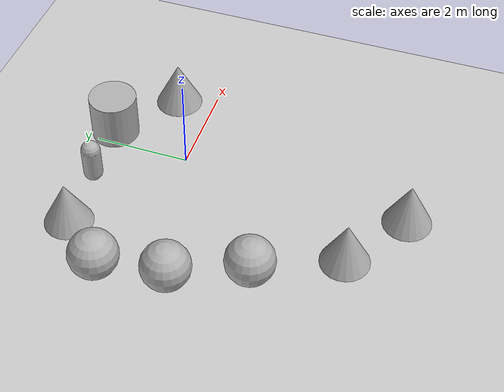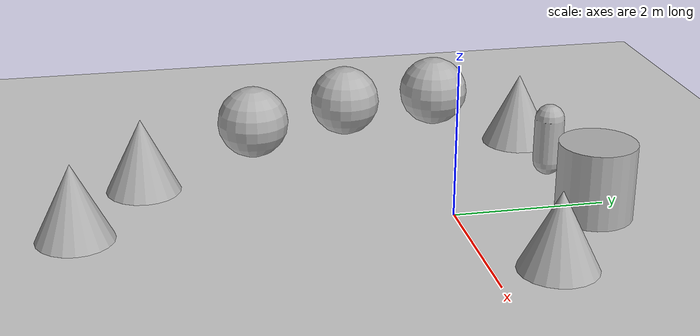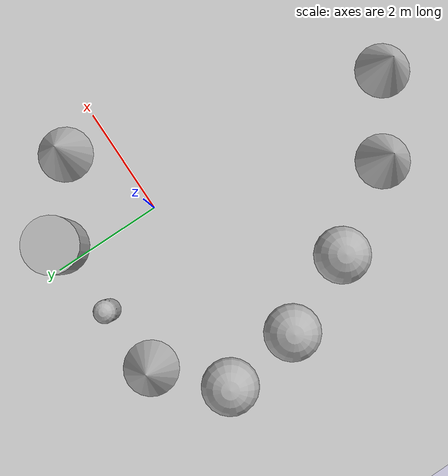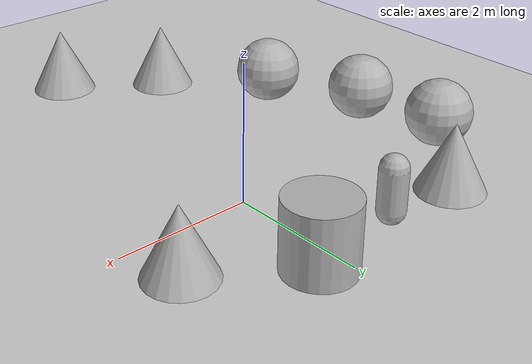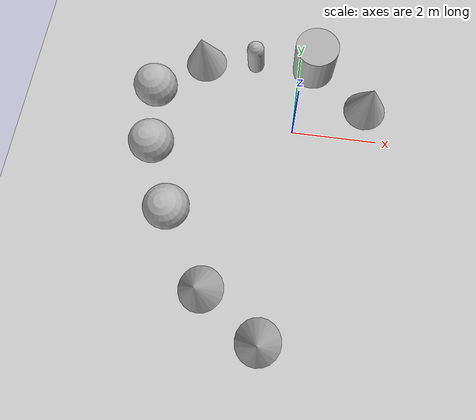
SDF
<sdf version='1.10'>
  <world name='empty'>
  <plugin
      filename="gz-sim-sensors-system"
      name="gz::sim::systems::Sensors">
      <render_engine>ogre</render_engine>
    </plugin>
    <physics name='1ms' type='ignored'>
      <max_step_size>0.001</max_step_size>
      <real_time_factor>1</real_time_factor>
      <real_time_update_rate>1000</real_time_update_rate>
    </physics>
    <plugin name='gz::sim::systems::Physics' filename='gz-sim-physics-system'/>
    <plugin name='gz::sim::systems::UserCommands' filename='gz-sim-user-commands-system'/>
    <plugin name='gz::sim::systems::SceneBroadcaster' filename='gz-sim-scene-broadcaster-system'/>
    <plugin name='gz::sim::systems::Contact' filename='gz-sim-contact-system'/>
    <gravity>0 0 -9.8000000000000007</gravity>
    <magnetic_field>5.5644999999999998e-06 2.2875799999999999e-05 -4.2388400000000002e-05</magnetic_field>
    <atmosphere type='adiabatic'/>
    <scene>
      <ambient>0.400000006 0.400000006 0.400000006 1</ambient>
      <background>0.699999988 0.699999988 0.699999988 1</background>
      <shadows>true</shadows>
    </scene>
    <model name='ground_plane'>
      <static>true</static>
      <link name='link'>
        <collision name='collision'>
          <geometry>
            <plane>
              <normal>0 0 1</normal>
              <size>100 100</size>
            </plane>
          </geometry>
          <surface>
            <friction>
              <ode/>
            </friction>
            <bounce/>
            <contact/>
          </surface>
        </collision>
        <visual name='visual'>
          <geometry>
            <plane>
              <normal>0 0 1</normal>
              <size>100 100</size>
            </plane>
          </geometry>
          <material>
            <ambient>0.800000012 0.800000012 0.800000012 1</ambient>
            <diffuse>0.800000012 0.800000012 0.800000012 1</diffuse>
            <specular>0.800000012 0.800000012 0.800000012 1</specular>
          </material>
        </visual>
        <pose>0 0 0 0 0 0</pose>
        <inertial>
          <pose>0 0 0 0 0 0</pose>
          <mass>1</mass>
          <inertia>
            <ixx>1</ixx>
            <ixy>0</ixy>
            <ixz>0</ixz>
            <iyy>1</iyy>
            <iyz>0</iyz>
            <izz>1</izz>
          </inertia>
        </inertial>
        <enable_wind>false</enable_wind>
      </link>
      <pose>0 0 0 0 0 0</pose>
      <self_collide>false</self_collide>
    </model>
    <model name='cylinder'>
      <pose>0.33956569160625705 1.7428431087014411 0.5 0 0 0</pose>
      <link name='cylinder_link'>
        <inertial>
          <inertia>
            <ixx>0.14580000000000001</ixx>
            <ixy>0</ixy>
            <ixz>0</ixz>
            <iyy>0.14580000000000001</iyy>
            <iyz>0</iyz>
            <izz>0.125</izz>
          </inertia>
          <mass>1</mass>
          <pose>0 0 0 0 0 0</pose>
        </inertial>
        <collision name='cylinder_collision'>
          <geometry>
            <cylinder>
              <radius>0.5</radius>
              <length>1</length>
            </cylinder>
          </geometry>
          <surface>
            <friction>
              <ode/>
            </friction>
            <bounce/>
            <contact/>
          </surface>
        </collision>
        <visual name='cylinder_visual'>
          <geometry>
            <cylinder>
              <radius>0.5</radius>
              <length>1</length>
            </cylinder>
          </geometry>
          <material>
            <ambient>0.300000012 0.300000012 0.300000012 1</ambient>
            <diffuse>0.699999988 0.699999988 0.699999988 1</diffuse>
            <specular>1 1 1 1</specular>
          </material>
        </visual>
        <pose>0 0 0 0 0 0</pose>
        <enable_wind>false</enable_wind>
      </link>
      <static>false</static>
      <self_collide>false</self_collide>
    </model>
    <model name='capsule'>
      <pose>-1.0736529480591992 1.6175272275102126 0.5 0 0 0</pose>
      <link name='capsule_link'>
        <inertial>
          <inertia>
            <ixx>0.074153999999999998</ixx>
            <ixy>0</ixy>
            <ixz>0</ixz>
            <iyy>0.074153999999999998</iyy>
            <iyz>0</iyz>
            <izz>0.018769000000000001</izz>
          </inertia>
          <mass>1</mass>
          <pose>0 0 0 0 0 0</pose>
        </inertial>
        <collision name='capsule_collision'>
          <geometry>
            <capsule>
              <radius>0.20000000000000001</radius>
              <length>0.59999999999999998</length>
            </capsule>
          </geometry>
          <surface>
            <friction>
              <ode/>
            </friction>
            <bounce/>
            <contact/>
          </surface>
        </collision>
        <visual name='capsule_visual'>
          <geometry>
            <capsule>
              <radius>0.20000000000000001</radius>
              <length>0.59999999999999998</length>
            </capsule>
          </geometry>
          <material>
            <ambient>0.300000012 0.300000012 0.300000012 1</ambient>
            <diffuse>0.699999988 0.699999988 0.699999988 1</diffuse>
            <specular>1 1 1 1</specular>
          </material>
        </visual>
        <pose>0 0 0 0 0 0</pose>
        <enable_wind>false</enable_wind>
      </link>
      <static>false</static>
      <self_collide>false</self_collide>
    </model>
    <model name='cone'>
      <pose>-2.3256486030578971 1.5980379677162329 0.5 0 0 0</pose>
      <link name='cone_link'>
        <inertial>
          <inertia>
            <ixx>0.074999999999999997</ixx>
            <ixy>0</ixy>
            <ixz>0</ixz>
            <iyy>0.074999999999999997</iyy>
            <iyz>0</iyz>
            <izz>0.074999999999999997</izz>
          </inertia>
          <mass>1</mass>
          <pose>0 0 0 0 0 0</pose>
        </inertial>
        <collision name='cone_collision'>
          <geometry>
            <cone>
              <radius>0.5</radius>
              <length>1</length>
            </cone>
          </geometry>
          <surface>
            <friction>
              <ode/>
            </friction>
            <bounce/>
            <contact/>
          </surface>
        </collision>
        <visual name='cone_visual'>
          <geometry>
            <cone>
              <radius>0.5</radius>
              <length>1</length>
            </cone>
          </geometry>
          <material>
            <ambient>0.300000012 0.300000012 0.300000012 1</ambient>
            <diffuse>0.699999988 0.699999988 0.699999988 1</diffuse>
            <specular>1 1 1 1</specular>
          </material>
        </visual>
        <pose>0 0 0 0 0 0</pose>
        <enable_wind>false</enable_wind>
      </link>
      <static>false</static>
      <self_collide>false</self_collide>
    </model>
    <model name='sphere'>
      <pose>-3.3019136068907882 0.58413740055611674 0.5 0 0 0</pose>
      <link name='sphere_link'>
        <inertial>
          <inertia>
            <ixx>0.10000000000000001</ixx>
            <ixy>0</ixy>
            <ixz>0</ixz>
            <iyy>0.10000000000000001</iyy>
            <iyz>0</iyz>
            <izz>0.10000000000000001</izz>
          </inertia>
          <mass>1</mass>
          <pose>0 0 0 0 0 0</pose>
        </inertial>
        <collision name='sphere_collision'>
          <geometry>
            <sphere>
              <radius>0.5</radius>
            </sphere>
          </geometry>
          <surface>
            <friction>
              <ode/>
            </friction>
            <bounce/>
            <contact/>
          </surface>
        </collision>
        <visual name='sphere_visual'>
          <geometry>
            <sphere>
              <radius>0.5</radius>
            </sphere>
          </geometry>
          <material>
            <ambient>0.300000012 0.300000012 0.300000012 1</ambient>
            <diffuse>0.699999988 0.699999988 0.699999988 1</diffuse>
            <specular>1 1 1 1</specular>
          </material>
        </visual>
        <pose>0 0 0 0 0 0</pose>
        <enable_wind>false</enable_wind>
      </link>
      <static>false</static>
      <self_collide>false</self_collide>
    </model>
    <model name='sphere_0'>
      <pose>-3.1293538819864524 -0.80383709333185371 0.5 0 0 0</pose>
      <link name='sphere_link'>
        <inertial>
          <inertia>
            <ixx>0.10000000000000001</ixx>
            <ixy>0</ixy>
            <ixz>0</ixz>
            <iyy>0.10000000000000001</iyy>
            <iyz>0</iyz>
            <izz>0.10000000000000001</izz>
          </inertia>
          <mass>1</mass>
          <pose>0 0 0 0 0 0</pose>
        </inertial>
        <collision name='sphere_collision'>
          <geometry>
            <sphere>
              <radius>0.5</radius>
            </sphere>
          </geometry>
          <surface>
            <friction>
              <ode/>
            </friction>
            <bounce/>
            <contact/>
          </surface>
        </collision>
        <visual name='sphere_visual'>
          <geometry>
            <sphere>
              <radius>0.5</radius>
            </sphere>
          </geometry>
          <material>
            <ambient>0.300000012 0.300000012 0.300000012 1</ambient>
            <diffuse>0.699999988 0.699999988 0.699999988 1</diffuse>
            <specular>1 1 1 1</specular>
          </material>
        </visual>
        <pose>0 0 0 0 0 0</pose>
        <enable_wind>false</enable_wind>
      </link>
      <static>false</static>
      <self_collide>false</self_collide>
    </model>
    <model name='sphere_1'>
      <pose>-2.5054964182880868 -2.2483306414366324 0.5 0 0 0</pose>
      <link name='sphere_link'>
        <inertial>
          <inertia>
            <ixx>0.10000000000000001</ixx>
            <ixy>0</ixy>
            <ixz>0</ixz>
            <iyy>0.10000000000000001</iyy>
            <iyz>0</iyz>
            <izz>0.10000000000000001</izz>
          </inertia>
          <mass>1</mass>
          <pose>0 0 0 0 0 0</pose>
        </inertial>
        <collision name='sphere_collision'>
          <geometry>
            <sphere>
              <radius>0.5</radius>
            </sphere>
          </geometry>
          <surface>
            <friction>
              <ode/>
            </friction>
            <bounce/>
            <contact/>
          </surface>
        </collision>
        <visual name='sphere_visual'>
          <geometry>
            <sphere>
              <radius>0.5</radius>
            </sphere>
          </geometry>
          <material>
            <ambient>0.300000012 0.300000012 0.300000012 1</ambient>
            <diffuse>0.699999988 0.699999988 0.699999988 1</diffuse>
            <specular>1 1 1 1</specular>
          </material>
        </visual>
        <pose>0 0 0 0 0 0</pose>
        <enable_wind>false</enable_wind>
      </link>
      <static>false</static>
      <self_collide>false</self_collide>
    </model>
    <model name='cone_0'>
      <pose>1.6771305760678512 0.79057555271239688 0.5 0 0 0</pose>
      <link name='cone_link'>
        <inertial>
          <inertia>
            <ixx>0.074999999999999997</ixx>
            <ixy>0</ixy>
            <ixz>0</ixz>
            <iyy>0.074999999999999997</iyy>
            <iyz>0</iyz>
            <izz>0.074999999999999997</izz>
          </inertia>
          <mass>1</mass>
          <pose>0 0 0 0 0 0</pose>
        </inertial>
        <collision name='cone_collision'>
          <geometry>
            <cone>
              <radius>0.5</radius>
              <length>1</length>
            </cone>
          </geometry>
          <surface>
            <friction>
              <ode/>
            </friction>
            <bounce/>
            <contact/>
          </surface>
        </collision>
        <visual name='cone_visual'>
          <geometry>
            <cone>
              <radius>0.5</radius>
              <length>1</length>
            </cone>
          </geometry>
          <material>
            <ambient>0.300000012 0.300000012 0.300000012 1</ambient>
            <diffuse>0.699999988 0.699999988 0.699999988 1</diffuse>
            <specular>1 1 1 1</specular>
          </material>
        </visual>
        <pose>0 0 0 0 0 0</pose>
        <enable_wind>false</enable_wind>
      </link>
      <static>false</static>
      <self_collide>false</self_collide>
    </model>
    <model name='cone_1'>
      <pose>-1.5544634433706586 -3.8497431070084467 0.5 0 0 0</pose>
      <link name='cone_link'>
        <inertial>
          <inertia>
            <ixx>0.074999999999999997</ixx>
            <ixy>0</ixy>
            <ixz>0</ixz>
            <iyy>0.074999999999999997</iyy>
            <iyz>0</iyz>
            <izz>0.074999999999999997</izz>
          </inertia>
          <mass>1</mass>
          <pose>0 0 0 0 0 0</pose>
        </inertial>
        <collision name='cone_collision'>
          <geometry>
            <cone>
              <radius>0.5</radius>
              <length>1</length>
            </cone>
          </geometry>
          <surface>
            <friction>
              <ode/>
            </friction>
            <bounce/>
            <contact/>
          </surface>
        </collision>
        <visual name='cone_visual'>
          <geometry>
            <cone>
              <radius>0.5</radius>
              <length>1</length>
            </cone>
          </geometry>
          <material>
            <ambient>0.300000012 0.300000012 0.300000012 1</ambient>
            <diffuse>0.699999988 0.699999988 0.699999988 1</diffuse>
            <specular>1 1 1 1</specular>
          </material>
        </visual>
        <pose>0 0 0 0 0 0</pose>
        <enable_wind>false</enable_wind>
      </link>
      <static>false</static>
      <self_collide>false</self_collide>
    </model>
    <model name='cone_2'>
      <pose>-0.19938504709957616 -4.7608769973316871 0.5 0 0 0</pose>
      <link name='cone_link'>
        <inertial>
          <inertia>
            <ixx>0.074999999999999997</ixx>
            <ixy>0</ixy>
            <ixz>0</ixz>
            <iyy>0.074999999999999997</iyy>
            <iyz>0</iyz>
            <izz>0.074999999999999997</izz>
          </inertia>
          <mass>1</mass>
          <pose>0 0 0 0 0 0</pose>
        </inertial>
        <collision name='cone_collision'>
          <geometry>
            <cone>
              <radius>0.5</radius>
              <length>1</length>
            </cone>
          </geometry>
          <surface>
            <friction>
              <ode/>
            </friction>
            <bounce/>
            <contact/>
          </surface>
        </collision>
        <visual name='cone_visual'>
          <geometry>
            <cone>
              <radius>0.5</radius>
              <length>1</length>
            </cone>
          </geometry>
          <material>
            <ambient>0.300000012 0.300000012 0.300000012 1</ambient>
            <diffuse>0.699999988 0.699999988 0.699999988 1</diffuse>
            <specular>1 1 1 1</specular>
          </material>
        </visual>
        <pose>0 0 0 0 0 0</pose>
        <enable_wind>false</enable_wind>
      </link>
      <static>false</static>
      <self_collide>false</self_collide>
    </model>
    <light name='sun' type='directional'>
      <pose>0 0 10 0 0 0</pose>
      <cast_shadows>true</cast_shadows>
      <intensity>1</intensity>
      <direction>-0.5 0.10000000000000001 -0.90000000000000002</direction>
      <diffuse>0.800000012 0.800000012 0.800000012 1</diffuse>
      <specular>0.200000003 0.200000003 0.200000003 1</specular>
      <attenuation>
        <range>1000</range>
        <linear>0.01</linear>
        <constant>0.90000000000000002</constant>
        <quadratic>0.001</quadratic>
      </attenuation>
      <spot>
        <inner_angle>0</inner_angle>
        <outer_angle>0</outer_angle>
        <falloff>0</falloff>
      </spot>
    </light>
  </world>
</sdf>
